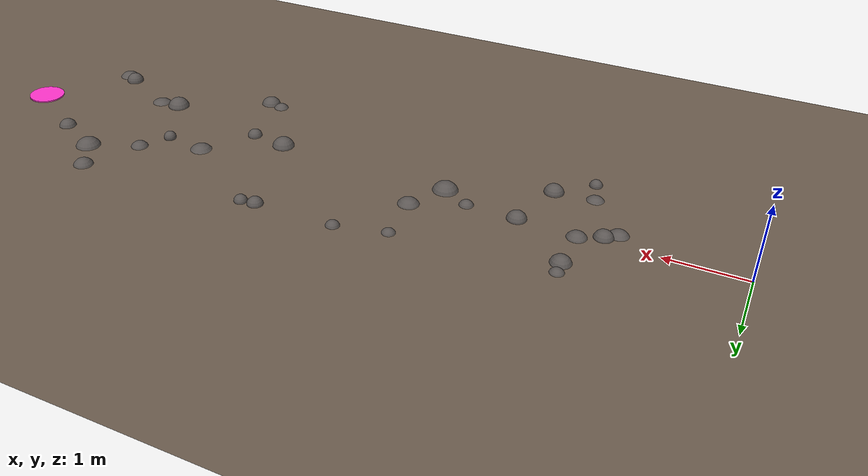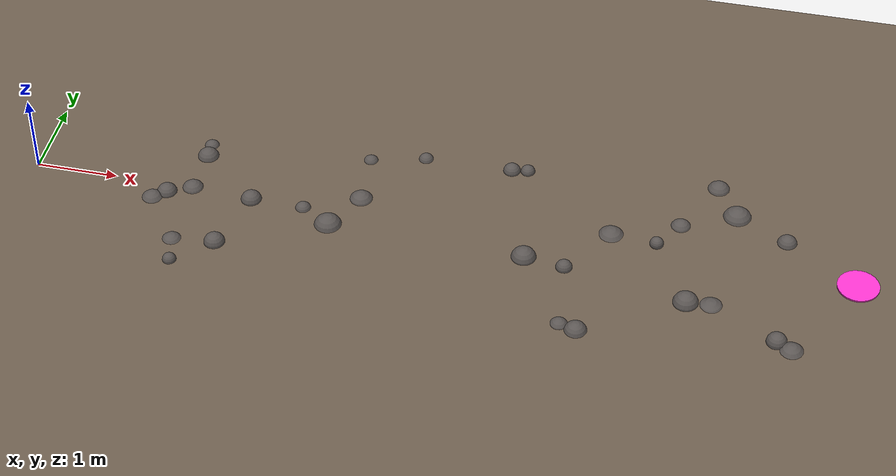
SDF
<?xml version="1.0"?>
<!-- GENERATED by scripts/make_test_worlds.py - scenario 'small_rocks': 30 small rocks (4-12 cm) on the route: must NOT avoid them. -->
<sdf version="1.9">
  <world name="vigil_rock_terrain">
    <gravity>0 0 -9.81</gravity>
    <physics name="physics" type="ignored"><max_step_size>0.001</max_step_size><real_time_factor>1</real_time_factor></physics>
    <plugin filename="gz-sim-physics-system" name="gz::sim::systems::Physics"><engine><filename>gz-physics-dartsim-plugin</filename></engine></plugin>
    <plugin filename="gz-sim-contact-system" name="gz::sim::systems::Contact"/>
    <plugin filename="gz-sim-user-commands-system" name="gz::sim::systems::UserCommands"/>
    <plugin filename="gz-sim-scene-broadcaster-system" name="gz::sim::systems::SceneBroadcaster"/>
    <plugin filename="gz-sim-sensors-system" name="gz::sim::systems::Sensors"><render_engine>ogre2</render_engine></plugin>
    <plugin filename="gz-sim-imu-system" name="gz::sim::systems::Imu"/>
    <scene><ambient>0.5 0.5 0.5 1</ambient><background>0.70 0.80 0.90 1</background><shadows>true</shadows><grid>false</grid></scene>
    <light name="sun" type="directional"><pose>0 0 20 0 0 0</pose><cast_shadows>true</cast_shadows>
      <diffuse>0.85 0.85 0.85 1</diffuse><specular>0.15 0.15 0.15 1</specular><direction>-0.4 0.2 -0.9</direction></light>
    <model name="ground_plane"><static>true</static>
      <link name="link">
        <collision name="collision"><geometry><plane><normal>0 0 1</normal><size>80 80</size></plane></geometry>
          <surface><friction><ode><mu>1.0</mu><mu2>1.0</mu2></ode></friction></surface></collision>
        <visual name="visual"><geometry><plane><normal>0 0 1</normal><size>80 80</size></plane></geometry>
          <material><ambient>0.42 0.36 0.30 1</ambient><diffuse>0.42 0.36 0.30 1</diffuse></material></visual>
      </link>
      <plugin filename="gz-sim-label-system" name="gz::sim::systems::Label"><label>1</label></plugin>
    </model>
    <model name="rock_0"><static>true</static><pose>6.7075 -1.2827 -0.0668 0 0 0</pose>
      <link name="link">
        <collision name="collision"><geometry><sphere><radius>0.1189</radius></sphere></geometry></collision>
        <visual name="visual"><geometry><sphere><radius>0.1189</radius></sphere></geometry>
          <material><ambient>0.35 0.33 0.32 1</ambient><diffuse>0.35 0.33 0.32 1</diffuse></material></visual>
      </link>
      <plugin filename="gz-sim-label-system" name="gz::sim::systems::Label"><label>2</label></plugin>
    </model>
    <model name="rock_1"><static>true</static><pose>1.9640 0.0223 -0.0751 0 0 0</pose>
      <link name="link">
        <collision name="collision"><geometry><sphere><radius>0.1443</radius></sphere></geometry></collision>
        <visual name="visual"><geometry><sphere><radius>0.1443</radius></sphere></geometry>
          <material><ambient>0.35 0.33 0.32 1</ambient><diffuse>0.35 0.33 0.32 1</diffuse></material></visual>
      </link>
      <plugin filename="gz-sim-label-system" name="gz::sim::systems::Label"><label>2</label></plugin>
    </model>
    <model name="rock_2"><static>true</static><pose>2.0588 -1.2279 -0.0098 0 0 0</pose>
      <link name="link">
        <collision name="collision"><geometry><sphere><radius>0.0845</radius></sphere></geometry></collision>
        <visual name="visual"><geometry><sphere><radius>0.0845</radius></sphere></geometry>
          <material><ambient>0.35 0.33 0.32 1</ambient><diffuse>0.35 0.33 0.32 1</diffuse></material></visual>
      </link>
      <plugin filename="gz-sim-label-system" name="gz::sim::systems::Label"><label>2</label></plugin>
    </model>
    <model name="rock_3"><static>true</static><pose>2.4904 -0.8303 -0.0248 0 0 0</pose>
      <link name="link">
        <collision name="collision"><geometry><sphere><radius>0.1309</radius></sphere></geometry></collision>
        <visual name="visual"><geometry><sphere><radius>0.1309</radius></sphere></geometry>
          <material><ambient>0.35 0.33 0.32 1</ambient><diffuse>0.35 0.33 0.32 1</diffuse></material></visual>
      </link>
      <plugin filename="gz-sim-label-system" name="gz::sim::systems::Label"><label>2</label></plugin>
    </model>
    <model name="rock_4"><static>true</static><pose>6.1168 -0.3100 -0.0395 0 0 0</pose>
      <link name="link">
        <collision name="collision"><geometry><sphere><radius>0.1553</radius></sphere></geometry></collision>
        <visual name="visual"><geometry><sphere><radius>0.1553</radius></sphere></geometry>
          <material><ambient>0.35 0.33 0.32 1</ambient><diffuse>0.35 0.33 0.32 1</diffuse></material></visual>
      </link>
      <plugin filename="gz-sim-label-system" name="gz::sim::systems::Label"><label>2</label></plugin>
    </model>
    <model name="rock_5"><static>true</static><pose>8.3677 -0.6312 -0.1534 0 0 0</pose>
      <link name="link">
        <collision name="collision"><geometry><sphere><radius>0.1972</radius></sphere></geometry></collision>
        <visual name="visual"><geometry><sphere><radius>0.1972</radius></sphere></geometry>
          <material><ambient>0.35 0.33 0.32 1</ambient><diffuse>0.35 0.33 0.32 1</diffuse></material></visual>
      </link>
      <plugin filename="gz-sim-label-system" name="gz::sim::systems::Label"><label>2</label></plugin>
    </model>
    <model name="rock_6"><static>true</static><pose>3.9679 0.9484 -0.0479 0 0 0</pose>
      <link name="link">
        <collision name="collision"><geometry><sphere><radius>0.0973</radius></sphere></geometry></collision>
        <visual name="visual"><geometry><sphere><radius>0.0973</radius></sphere></geometry>
          <material><ambient>0.35 0.33 0.32 1</ambient><diffuse>0.35 0.33 0.32 1</diffuse></material></visual>
      </link>
      <plugin filename="gz-sim-label-system" name="gz::sim::systems::Label"><label>2</label></plugin>
    </model>
    <model name="rock_7"><static>true</static><pose>6.6113 -0.3828 -0.0152 0 0 0</pose>
      <link name="link">
        <collision name="collision"><geometry><sphere><radius>0.1017</radius></sphere></geometry></collision>
        <visual name="visual"><geometry><sphere><radius>0.1017</radius></sphere></geometry>
          <material><ambient>0.35 0.33 0.32 1</ambient><diffuse>0.35 0.33 0.32 1</diffuse></material></visual>
      </link>
      <plugin filename="gz-sim-label-system" name="gz::sim::systems::Label"><label>2</label></plugin>
    </model>
    <model name="rock_8"><static>true</static><pose>1.9768 -0.8821 -0.1007 0 0 0</pose>
      <link name="link">
        <collision name="collision"><geometry><sphere><radius>0.1457</radius></sphere></geometry></collision>
        <visual name="visual"><geometry><sphere><radius>0.1457</radius></sphere></geometry>
          <material><ambient>0.35 0.33 0.32 1</ambient><diffuse>0.35 0.33 0.32 1</diffuse></material></visual>
      </link>
      <plugin filename="gz-sim-label-system" name="gz::sim::systems::Label"><label>2</label></plugin>
    </model>
    <model name="rock_9"><static>true</static><pose>4.0132 0.2567 -0.0874 0 0 0</pose>
      <link name="link">
        <collision name="collision"><geometry><sphere><radius>0.1616</radius></sphere></geometry></collision>
        <visual name="visual"><geometry><sphere><radius>0.1616</radius></sphere></geometry>
          <material><ambient>0.35 0.33 0.32 1</ambient><diffuse>0.35 0.33 0.32 1</diffuse></material></visual>
      </link>
      <plugin filename="gz-sim-label-system" name="gz::sim::systems::Label"><label>2</label></plugin>
    </model>
    <model name="rock_10"><static>true</static><pose>7.8550 0.5970 -0.0704 0 0 0</pose>
      <link name="link">
        <collision name="collision"><geometry><sphere><radius>0.1344</radius></sphere></geometry></collision>
        <visual name="visual"><geometry><sphere><radius>0.1344</radius></sphere></geometry>
          <material><ambient>0.35 0.33 0.32 1</ambient><diffuse>0.35 0.33 0.32 1</diffuse></material></visual>
      </link>
      <plugin filename="gz-sim-label-system" name="gz::sim::systems::Label"><label>2</label></plugin>
    </model>
    <model name="rock_11"><static>true</static><pose>5.7016 1.1254 -0.0233 0 0 0</pose>
      <link name="link">
        <collision name="collision"><geometry><sphere><radius>0.1093</radius></sphere></geometry></collision>
        <visual name="visual"><geometry><sphere><radius>0.1093</radius></sphere></geometry>
          <material><ambient>0.35 0.33 0.32 1</ambient><diffuse>0.35 0.33 0.32 1</diffuse></material></visual>
      </link>
      <plugin filename="gz-sim-label-system" name="gz::sim::systems::Label"><label>2</label></plugin>
    </model>
    <model name="rock_12"><static>true</static><pose>9.3414 -1.1458 -0.1045 0 0 0</pose>
      <link name="link">
        <collision name="collision"><geometry><sphere><radius>0.1675</radius></sphere></geometry></collision>
        <visual name="visual"><geometry><sphere><radius>0.1675</radius></sphere></geometry>
          <material><ambient>0.35 0.33 0.32 1</ambient><diffuse>0.35 0.33 0.32 1</diffuse></material></visual>
      </link>
      <plugin filename="gz-sim-label-system" name="gz::sim::systems::Label"><label>2</label></plugin>
    </model>
    <model name="rock_13"><static>true</static><pose>2.7159 -0.0331 -0.0296 0 0 0</pose>
      <link name="link">
        <collision name="collision"><geometry><sphere><radius>0.1302</radius></sphere></geometry></collision>
        <visual name="visual"><geometry><sphere><radius>0.1302</radius></sphere></geometry>
          <material><ambient>0.35 0.33 0.32 1</ambient><diffuse>0.35 0.33 0.32 1</diffuse></material></visual>
      </link>
      <plugin filename="gz-sim-label-system" name="gz::sim::systems::Label"><label>2</label></plugin>
    </model>
    <model name="rock_14"><static>true</static><pose>7.6166 0.2191 0.0088 0 0 0</pose>
      <link name="link">
        <collision name="collision"><geometry><sphere><radius>0.0847</radius></sphere></geometry></collision>
        <visual name="visual"><geometry><sphere><radius>0.0847</radius></sphere></geometry>
          <material><ambient>0.35 0.33 0.32 1</ambient><diffuse>0.35 0.33 0.32 1</diffuse></material></visual>
      </link>
      <plugin filename="gz-sim-label-system" name="gz::sim::systems::Label"><label>2</label></plugin>
    </model>
    <model name="rock_15"><static>true</static><pose>7.0624 0.2831 -0.1200 0 0 0</pose>
      <link name="link">
        <collision name="collision"><geometry><sphere><radius>0.1851</radius></sphere></geometry></collision>
        <visual name="visual"><geometry><sphere><radius>0.1851</radius></sphere></geometry>
          <material><ambient>0.35 0.33 0.32 1</ambient><diffuse>0.35 0.33 0.32 1</diffuse></material></visual>
      </link>
      <plugin filename="gz-sim-label-system" name="gz::sim::systems::Label"><label>2</label></plugin>
    </model>
    <model name="rock_16"><static>true</static><pose>8.2197 1.3340 -0.0731 0 0 0</pose>
      <link name="link">
        <collision name="collision"><geometry><sphere><radius>0.1496</radius></sphere></geometry></collision>
        <visual name="visual"><geometry><sphere><radius>0.1496</radius></sphere></geometry>
          <material><ambient>0.35 0.33 0.32 1</ambient><diffuse>0.35 0.33 0.32 1</diffuse></material></visual>
      </link>
      <plugin filename="gz-sim-label-system" name="gz::sim::systems::Label"><label>2</label></plugin>
    </model>
    <model name="rock_17"><static>true</static><pose>1.9854 0.6045 -0.0438 0 0 0</pose>
      <link name="link">
        <collision name="collision"><geometry><sphere><radius>0.1369</radius></sphere></geometry></collision>
        <visual name="visual"><geometry><sphere><radius>0.1369</radius></sphere></geometry>
          <material><ambient>0.35 0.33 0.32 1</ambient><diffuse>0.35 0.33 0.32 1</diffuse></material></visual>
      </link>
      <plugin filename="gz-sim-label-system" name="gz::sim::systems::Label"><label>2</label></plugin>
    </model>
    <model name="rock_18"><static>true</static><pose>8.0754 -0.6462 -0.0382 0 0 0</pose>
      <link name="link">
        <collision name="collision"><geometry><sphere><radius>0.1577</radius></sphere></geometry></collision>
        <visual name="visual"><geometry><sphere><radius>0.1577</radius></sphere></geometry>
          <material><ambient>0.35 0.33 0.32 1</ambient><diffuse>0.35 0.33 0.32 1</diffuse></material></visual>
      </link>
      <plugin filename="gz-sim-label-system" name="gz::sim::systems::Label"><label>2</label></plugin>
    </model>
    <model name="rock_19"><static>true</static><pose>1.6805 -0.1149 -0.0328 0 0 0</pose>
      <link name="link">
        <collision name="collision"><geometry><sphere><radius>0.1263</radius></sphere></geometry></collision>
        <visual name="visual"><geometry><sphere><radius>0.1263</radius></sphere></geometry>
          <material><ambient>0.35 0.33 0.32 1</ambient><diffuse>0.35 0.33 0.32 1</diffuse></material></visual>
      </link>
      <plugin filename="gz-sim-label-system" name="gz::sim::systems::Label"><label>2</label></plugin>
    </model>
    <model name="rock_20"><static>true</static><pose>1.9716 0.8047 -0.0508 0 0 0</pose>
      <link name="link">
        <collision name="collision"><geometry><sphere><radius>0.1002</radius></sphere></geometry></collision>
        <visual name="visual"><geometry><sphere><radius>0.1002</radius></sphere></geometry>
          <material><ambient>0.35 0.33 0.32 1</ambient><diffuse>0.35 0.33 0.32 1</diffuse></material></visual>
      </link>
      <plugin filename="gz-sim-label-system" name="gz::sim::systems::Label"><label>2</label></plugin>
    </model>
    <model name="rock_21"><static>true</static><pose>4.6276 1.1143 -0.0357 0 0 0</pose>
      <link name="link">
        <collision name="collision"><geometry><sphere><radius>0.0955</radius></sphere></geometry></collision>
        <visual name="visual"><geometry><sphere><radius>0.0955</radius></sphere></geometry>
          <material><ambient>0.35 0.33 0.32 1</ambient><diffuse>0.35 0.33 0.32 1</diffuse></material></visual>
      </link>
      <plugin filename="gz-sim-label-system" name="gz::sim::systems::Label"><label>2</label></plugin>
    </model>
    <model name="rock_22"><static>true</static><pose>5.8955 1.1502 -0.0137 0 0 0</pose>
      <link name="link">
        <collision name="collision"><geometry><sphere><radius>0.0897</radius></sphere></geometry></collision>
        <visual name="visual"><geometry><sphere><radius>0.0897</radius></sphere></geometry>
          <material><ambient>0.35 0.33 0.32 1</ambient><diffuse>0.35 0.33 0.32 1</diffuse></material></visual>
      </link>
      <plugin filename="gz-sim-label-system" name="gz::sim::systems::Label"><label>2</label></plugin>
    </model>
    <model name="rock_23"><static>true</static><pose>3.7274 -0.2541 -0.0692 0 0 0</pose>
      <link name="link">
        <collision name="collision"><geometry><sphere><radius>0.1783</radius></sphere></geometry></collision>
        <visual name="visual"><geometry><sphere><radius>0.1783</radius></sphere></geometry>
          <material><ambient>0.35 0.33 0.32 1</ambient><diffuse>0.35 0.33 0.32 1</diffuse></material></visual>
      </link>
      <plugin filename="gz-sim-label-system" name="gz::sim::systems::Label"><label>2</label></plugin>
    </model>
    <model name="rock_24"><static>true</static><pose>9.1618 -1.0472 -0.0123 0 0 0</pose>
      <link name="link">
        <collision name="collision"><geometry><sphere><radius>0.1231</radius></sphere></geometry></collision>
        <visual name="visual"><geometry><sphere><radius>0.1231</radius></sphere></geometry>
          <material><ambient>0.35 0.33 0.32 1</ambient><diffuse>0.35 0.33 0.32 1</diffuse></material></visual>
      </link>
      <plugin filename="gz-sim-label-system" name="gz::sim::systems::Label"><label>2</label></plugin>
    </model>
    <model name="rock_25"><static>true</static><pose>3.3667 -0.0451 -0.0426 0 0 0</pose>
      <link name="link">
        <collision name="collision"><geometry><sphere><radius>0.1011</radius></sphere></geometry></collision>
        <visual name="visual"><geometry><sphere><radius>0.1011</radius></sphere></geometry>
          <material><ambient>0.35 0.33 0.32 1</ambient><diffuse>0.35 0.33 0.32 1</diffuse></material></visual>
      </link>
      <plugin filename="gz-sim-label-system" name="gz::sim::systems::Label"><label>2</label></plugin>
    </model>
    <model name="rock_26"><static>true</static><pose>1.5327 -0.2432 -0.0897 0 0 0</pose>
      <link name="link">
        <collision name="collision"><geometry><sphere><radius>0.1507</radius></sphere></geometry></collision>
        <visual name="visual"><geometry><sphere><radius>0.1507</radius></sphere></geometry>
          <material><ambient>0.35 0.33 0.32 1</ambient><diffuse>0.35 0.33 0.32 1</diffuse></material></visual>
      </link>
      <plugin filename="gz-sim-label-system" name="gz::sim::systems::Label"><label>2</label></plugin>
    </model>
    <model name="rock_27"><static>true</static><pose>9.1248 0.5715 -0.0390 0 0 0</pose>
      <link name="link">
        <collision name="collision"><geometry><sphere><radius>0.1243</radius></sphere></geometry></collision>
        <visual name="visual"><geometry><sphere><radius>0.1243</radius></sphere></geometry>
          <material><ambient>0.35 0.33 0.32 1</ambient><diffuse>0.35 0.33 0.32 1</diffuse></material></visual>
      </link>
      <plugin filename="gz-sim-label-system" name="gz::sim::systems::Label"><label>2</label></plugin>
    </model>
    <model name="rock_28"><static>true</static><pose>6.9096 -1.3380 -0.0525 0 0 0</pose>
      <link name="link">
        <collision name="collision"><geometry><sphere><radius>0.1419</radius></sphere></geometry></collision>
        <visual name="visual"><geometry><sphere><radius>0.1419</radius></sphere></geometry>
          <material><ambient>0.35 0.33 0.32 1</ambient><diffuse>0.35 0.33 0.32 1</diffuse></material></visual>
      </link>
      <plugin filename="gz-sim-label-system" name="gz::sim::systems::Label"><label>2</label></plugin>
    </model>
    <model name="rock_29"><static>true</static><pose>8.4961 0.8936 -0.0855 0 0 0</pose>
      <link name="link">
        <collision name="collision"><geometry><sphere><radius>0.1879</radius></sphere></geometry></collision>
        <visual name="visual"><geometry><sphere><radius>0.1879</radius></sphere></geometry>
          <material><ambient>0.35 0.33 0.32 1</ambient><diffuse>0.35 0.33 0.32 1</diffuse></material></visual>
      </link>
      <plugin filename="gz-sim-label-system" name="gz::sim::systems::Label"><label>2</label></plugin>
    </model>
    <!-- goal marker B (visual only) -->
    <model name="goal_B"><static>true</static><pose>10.0 0.0 0.020 0 0 0</pose>
      <link name="link"><visual name="v"><geometry><cylinder><radius>0.25</radius><length>0.02</length></cylinder></geometry>
        <material><ambient>1 0.2 0.8 1</ambient><diffuse>1 0.2 0.8 1</diffuse><emissive>0.6 0.1 0.5 1</emissive></material></visual></link>
    </model>
  </world>
</sdf>
